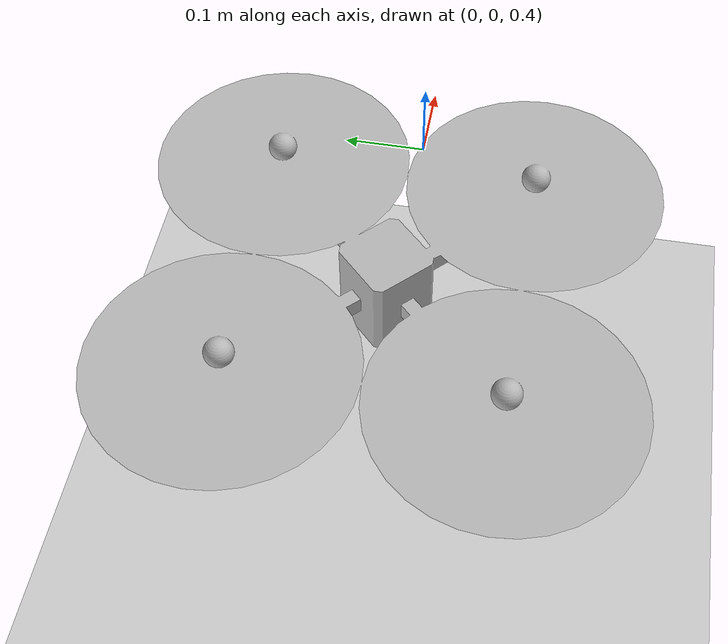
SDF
<?xml version="1.0"?>
<sdf version="1.5">

<!-- Quadcopter Model -->
    <world name="default">
        <include>
            <uri>model://ground_plane</uri>
        </include>
        <include>
            <uri>model://sun</uri>
        </include>

        <model name="quadcopter">
            <link name="full_model">
                <inertial name="full_inertial">
                    <pose>0 0 0 0 0 0</pose>
                    <mass>0.4</mass>
                    <inertia>
                        <ixx>0.0038278</ixx>
                        <ixy>0.0</ixy>
                        <ixz>0.0</ixz>
                        <iyy>0.0038278</iyy>
                        <izz>0.0071345</izz>
                    </inertia>
                </inertial>

                <visual name="full_visual">
                    <pose>0 0 0 1.57079633 0 0</pose>
                    <geometry>
                        <mesh>
				<uri>model://quadcopter/meshes/models/quad.obj</uri>
                            <scale>1 1 1</scale>
                        </mesh>
                    </geometry>

                </visual>

                <collision name="full_collision">
                    <pose>0 0 0 0 0 0</pose>
                    <geometry>
                        <mesh>
				<uri>model://quadcopter/meshes/models/quad.stl</uri>
                            <scale>1 1 1</scale>
                        </mesh>
                    </geometry>
                </collision>

            </link>
        </model>
    </world>
</sdf>
